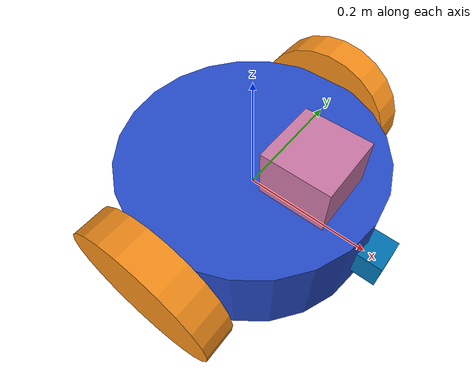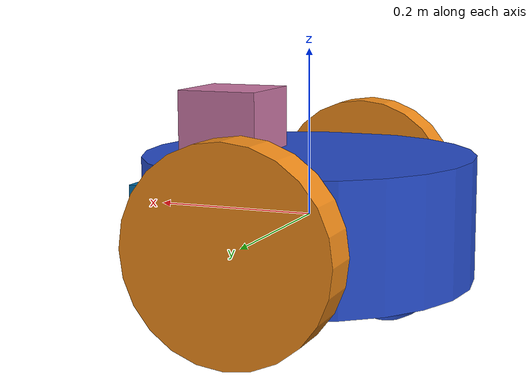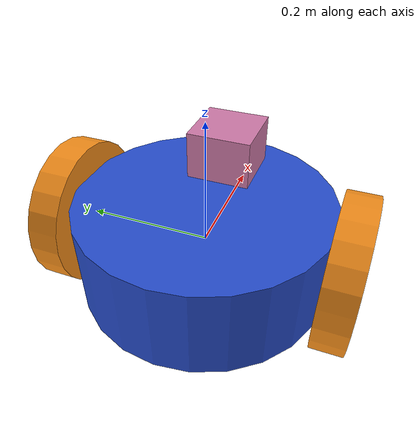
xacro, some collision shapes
<?xml version='1.0'?>

<robot name="my_robot" xmlns:xacro="http://www.ros.org/wiki/xacro">
<xacro:include filename="$(find my_robot)/urdf/my_robot.gazebo" />

                                                  <link name="robot_footprint"></link>

                                                  <joint name="robot_footprint_joint" type="fixed">
                                                    <origin xyz="0 0 0" rpy="0 0 0" />
                                                    <parent link="robot_footprint"/>
                                                    <child link="chassis" />
                                                  </joint>

                                                  <link name='chassis'>
                                                    <pose>0 0 0.1 0 0 0</pose>

                                                    <inertial>
                                                      <mass value="15.0"/>
                                                      <origin xyz="0.0 0 0" rpy=" 0 0 0"/>
                                                      <inertia
                                                          ixx="0.1" ixy="0" ixz="0"
                                                          iyy="0.1" iyz="0"
                                                          izz="0.1"
                                                      />
                                                    </inertial>

                                                    <collision name='collision'>
                                                      <origin xyz="0 0 0" rpy=" 0 0 0"/>
                                                      <geometry>
                                                        <cylinder length=".15" radius = ".2"/>
                                                      </geometry>
                                                    </collision>

                                                    <visual name='chassis_visual'>
                                                      <origin xyz="0 0 0" rpy=" 0 0 0"/>
                                                      <geometry>
                                                        <cylinder length=".15" radius = ".2"/>
                                                      </geometry>
                                                    </visual>

                                                    <collision name='back_caster_collision'>
                                                      <origin xyz="-0.10 0 -0.06" rpy=" 0 0 0"/>
                                                      <geometry>
                                                        <sphere radius="0.0599"/>
                                                      </geometry>
                                                    </collision>

                                                    <visual name='back_caster_visual'>
                                                      <origin xyz="-0.10 0 -0.06" rpy=" 0 0 0"/>
                                                      <geometry>
                                                        <sphere radius="0.06"/>
                                                      </geometry>
                                                    </visual>

                                                    <collision name='front_caster_collision'>
                                                      <origin xyz="0.10 0 -0.06" rpy=" 0 0 0"/>
                                                      <geometry>
                                                        <sphere radius="0.0599"/>
                                                      </geometry>
                                                    </collision>

                                                    <visual name='front_caster_visual'>
                                                      <origin xyz="0.10 0 -0.06" rpy=" 0 0 0"/>
                                                      <geometry>
                                                        <sphere radius="0.06"/>
                                                      </geometry>
                                                    </visual>

                                                  </link>

                                                  <link name="left_wheel">
                                                    <inertial>
                                                      <origin xyz = "0 0 0" rpy = "0 1.5707 1.5707"/>
                                                      <mass value="5"/>
                                                      <inertia
                                                            ixx="0.1" ixy="0" ixz="0"
                                                            iyy="0.1" iyz="0"
                                                            izz="0.1"
                                                      />
                                                    </inertial>

                                                    <collision name="left_wheel_collision">
                                                      <geometry>
                                                        <cylinder radius=".12" length=".05"/>
                                                      </geometry>
                                                      <origin xyz = "0 0 0" rpy = "0 1.5707 1.5707"/>
                                                    </collision>

		                                    <visual name = "left_wheel_visual">
                                                      <geometry>
                                                        <cylinder radius=".12" length=".05"/>
                                                      </geometry>
                                                      <origin xyz = "0 0 0" rpy = "0 1.5707 1.5707"/>
                                                    </visual>

                                                   </link>

                                                   <joint type="continuous" name="left_wheel_hinge">
                                                     <origin xyz="0 0.22 0" rpy="0 0 0"/>
                                                     <child link="left_wheel"/>
                                                     <parent link="chassis"/>
                                                     <axis xyz="0 1 0" rpy="0 0 0"/>
                                                     <limit effort="10000" velocity="1000"/>
                                                     <dynamics damping="1.0" friction="1.0"/>
                                                   </joint>

                                                  <link name="right_wheel">
                                                    <inertial>
                                                      <origin xyz = "0 0 0" rpy = "0 1.5707 1.5707"/>
                                                      <mass value="5"/>
                                                      <inertia
                                                            ixx="0.1" ixy="0" ixz="0"
                                                            iyy="0.1" iyz="0"
                                                            izz="0.1"
                                                      />
                                                    </inertial>

                                                    <collision name="right_wheel_collision">
                                                      <geometry>
                                                        <cylinder radius=".12" length=".05"/>
                                                      </geometry>
                                                      <origin xyz = "0 0 0" rpy = "0 1.5707 1.5707"/>
                                                    </collision>

		                                    <visual name = "right_wheel_visual">
                                                      <geometry>
                                                        <cylinder radius=".12" length=".05"/>
                                                      </geometry>
                                                      <origin xyz = "0 0 0" rpy = "0 1.5707 1.5707"/>
                                                    </visual>

                                                   </link>

                                                   <joint type="continuous" name="right_wheel_hinge">
                                                     <origin xyz="0 -0.22 0" rpy="0 0 0"/>
                                                     <child link="right_wheel"/>
                                                     <parent link="chassis"/>
                                                     <axis xyz="0 1 0" rpy="0 0 0"/>
                                                     <limit effort="10000" velocity="1000"/>
                                                     <dynamics damping="1.0" friction="1.0"/>
                                                   </joint>

                                                   <link name="camera">
                                                     <visual>
						       <geometry>
						         <box size = "0.05 0.05 0.05"/>
						       </geometry>
                                                     </visual>
						     <collision>
						       <geometry>
						         <box size = "0.05 0.05 0.05"/>
						       </geometry>
						     </collision>
						     <inertial>
                                                       <origin xyz="0 0 0" rpy="0 0 0"/>
						       <mass value = "0.1"/>
						       <inertia ixx="1e-6" ixy="0" ixz="0" iyy="1e-6" iyz="0" izz="1e-6"/>
						     </inertial>
                                                   </link>

                                                   <joint type="fixed" name="camera_joint">
                                                     <origin xyz="0.21 0 0" rpy="0 0 0"/>
                                                     <child link="camera"/>
                                                     <parent link="chassis"/>
                                                     <axis xyz="0 1 0"/>
                                                   </joint>

                                                   <joint name="camera_link_joint" type="fixed">
                                                     <origin xyz="0 0 0" rpy="-1.5707 0 -1.5707"/>
                                                     <parent link="camera"/>
                                                     <child link="camera_link_optical"/>
                                                   </joint>

                                                   <link name="camera_link_optical">
                                                   </link>

                                                   <link name="hokuyo">
                                                     <visual>
                                                       <geometry>
                                                         <mesh filename="package://my_robot/meshes/hokuyo.dae"/>
                                                       </geometry>
                                                     </visual>
                                                     <collision>
                                                       <geometry>
                                                         <box size="0.1 0.1 0.1"/>
                                                       </geometry>
                                                     </collision>
                                                     <inertial>
                                                       <origin xyz="0 0 0" rpy="0 0 0"/>
                                                       <mass value="1e-5"/>
                                                       <inertia ixx="1e-6" ixy="0" ixz="0" iyy="1e-6" iyz="0" izz="1e-6"/>
                                                     </inertial>
                                                   </link>

                                                   <joint name="hokuyo_joint" type="fixed">
                                                     <parent link="chassis"/>
                                                     <child link="hokuyo"/>
                                                     <origin xyz="0.10 0 0.1" rpy="0 0 0"/>
                                                     <axis xyz="0 1 0"/>
                                                   </joint>

                                                   <gazebo reference="chassis">
                                                     <material>Gazebo/Blue</material>
                                                   </gazebo>

                                                   <gazebo reference="left_wheel">
                                                     <material>Gazebo/Orange</material>
                                                   </gazebo>

                                                   <gazebo reference="right_wheel">
                                                     <material>Gazebo/Orange</material>
                                                   </gazebo>

</robot>
